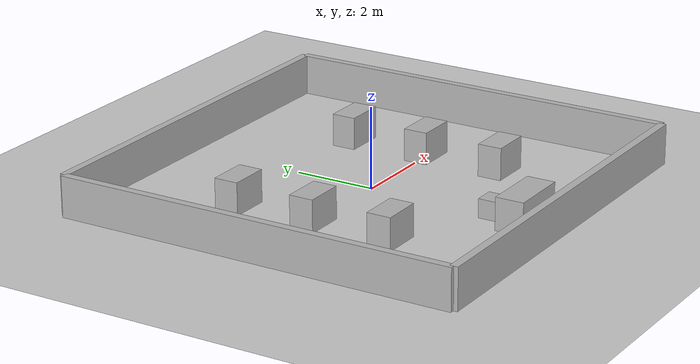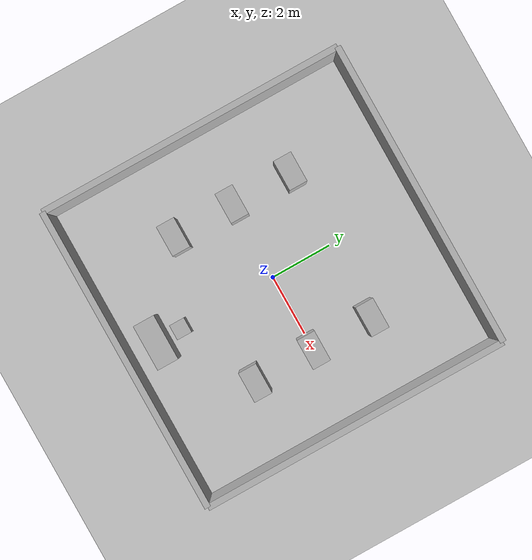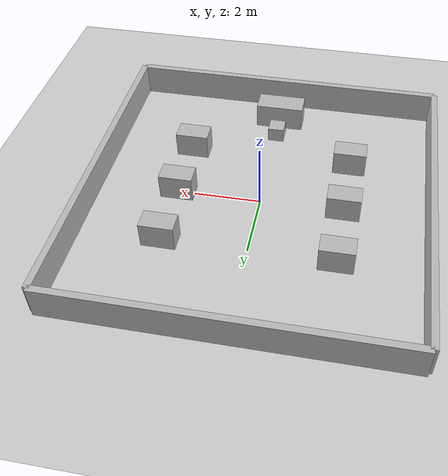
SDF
<?xml version="1.0" ?>
<sdf version="1.8">

<world name="classroom_world">

  <!-- Physics -->
  <physics name="1ms" type="gz-physics">
    <max_step_size>0.001</max_step_size>
    <real_time_factor>1.0</real_time_factor>
  </physics>

  <!-- Plugins -->
  <plugin name="gz::sim::systems::Physics" filename="gz-sim-physics-system"/>
  <plugin name="gz::sim::systems::UserCommands" filename="gz-sim-user-commands-system"/>
  <plugin name="gz::sim::systems::SceneBroadcaster" filename="gz-sim-scene-broadcaster-system"/>
  <plugin name="gz::sim::systems::Sensors" filename="gz-sim-sensors-system">
    <render_engine>ogre2</render_engine>
  </plugin>

  <!-- Light -->
  <light type="directional" name="sun">
    <pose>0 0 10 0 0 0</pose>
    <diffuse>0.8 0.8 0.8 1</diffuse>
    <specular>0.2 0.2 0.2 1</specular>
    <direction>-0.5 0.1 -0.9</direction>
  </light>

  <!-- Ground -->
  <model name="ground">
    <static>true</static>
    <link name="link">
      <collision name="ground_collision">
        <geometry>
          <plane>
            <normal>0 0 1</normal>
            <size>20 20</size>
          </plane>
        </geometry>
      </collision>
      <visual name="ground_visual">
        <geometry>
          <plane>
            <normal>0 0 1</normal>
            <size>20 20</size>
          </plane>
        </geometry>
      </visual>
    </link>
  </model>

  <!-- WALLS -->
  <model name="walls">
    <static>true</static>
    <link name="link">

      <collision name="north_collision">
        <pose>0 5 0.5 0 0 0</pose>
        <geometry><box><size>10 0.2 1</size></box></geometry>
      </collision>

      <collision name="south_collision">
        <pose>0 -5 0.5 0 0 0</pose>
        <geometry><box><size>10 0.2 1</size></box></geometry>
      </collision>

      <collision name="east_collision">
        <pose>5 0 0.5 0 0 0</pose>
        <geometry><box><size>0.2 10 1</size></box></geometry>
      </collision>

      <collision name="west_collision">
        <pose>-5 0 0.5 0 0 0</pose>
        <geometry><box><size>0.2 10 1</size></box></geometry>
      </collision>

      <visual name="north_visual">
        <pose>0 5 0.5 0 0 0</pose>
        <geometry><box><size>10 0.2 1</size></box></geometry>
      </visual>

      <visual name="south_visual">
        <pose>0 -5 0.5 0 0 0</pose>
        <geometry><box><size>10 0.2 1</size></box></geometry>
      </visual>

      <visual name="east_visual">
        <pose>5 0 0.5 0 0 0</pose>
        <geometry><box><size>0.2 10 1</size></box></geometry>
      </visual>

      <visual name="west_visual">
        <pose>-5 0 0.5 0 0 0</pose>
        <geometry><box><size>0.2 10 1</size></box></geometry>
      </visual>

    </link>
  </model>

  <!-- LEFT TABLES -->
  <model name="l_table_1">
    <static>true</static>
    <pose>-2.5 -2 0.4 0 0 0</pose>
    <link name="link">
      <visual name="visual">
        <geometry><box><size>1 0.6 0.8</size></box></geometry>
      </visual>
      <collision name="collision">
        <geometry><box><size>1 0.6 0.8</size></box></geometry>
      </collision>
    </link>
  </model>

  <model name="l_table_2">
    <static>true</static>
    <pose>-2.5 0 0.4 0 0 0</pose>
    <link name="link">
      <visual name="visual">
        <geometry><box><size>1 0.6 0.8</size></box></geometry>
      </visual>
      <collision name="collision">
        <geometry><box><size>1 0.6 0.8</size></box></geometry>
      </collision>
    </link>
  </model>

  <model name="l_table_3">
    <static>true</static>
    <pose>-2.5 2 0.4 0 0 0</pose>
    <link name="link">
      <visual name="visual">
        <geometry><box><size>1 0.6 0.8</size></box></geometry>
      </visual>
      <collision name="collision">
        <geometry><box><size>1 0.6 0.8</size></box></geometry>
      </collision>
    </link>
  </model>

  <!-- RIGHT TABLES -->
  <model name="r_table_1">
    <static>true</static>
    <pose>2.5 -2 0.4 0 0 0</pose>
    <link name="link">
      <visual name="visual">
        <geometry><box><size>1 0.6 0.8</size></box></geometry>
      </visual>
      <collision name="collision">
        <geometry><box><size>1 0.6 0.8</size></box></geometry>
      </collision>
    </link>
  </model>

  <model name="r_table_2">
    <static>true</static>
    <pose>2.5 0 0.4 0 0 0</pose>
    <link name="link">
      <visual name="visual">
        <geometry><box><size>1 0.6 0.8</size></box></geometry>
      </visual>
      <collision name="collision">
        <geometry><box><size>1 0.6 0.8</size></box></geometry>
      </collision>
    </link>
  </model>

  <model name="r_table_3">
    <static>true</static>
    <pose>2.5 2 0.4 0 0 0</pose>
    <link name="link">
      <visual name="visual">
        <geometry><box><size>1 0.6 0.8</size></box></geometry>
      </visual>
      <collision name="collision">
        <geometry><box><size>1 0.6 0.8</size></box></geometry>
      </collision>
    </link>
  </model>

  <model name="teacher_table">
    <static>true</static>
    <pose>0 -4 0.4 0 0 0</pose>
    <link name="link">
      <visual name="visual">
        <geometry><box><size>1.5 0.7 0.8</size></box></geometry>
      </visual>
      <collision name="collision">
        <geometry><box><size>1.5 0.7 0.8</size></box></geometry>
      </collision>
    </link>
  </model>

  <model name="teacher_chair">
    <static>true</static>
    <pose>0 -3.2 0.2 0 0 0</pose>
    <link name="link">
      <visual name="visual">
        <geometry><box><size>0.5 0.5 0.5</size></box></geometry>
      </visual>
      <collision name="collision">
        <geometry><box><size>0.5 0.5 0.5</size></box></geometry>
      </collision>
    </link>
  </model>

</world>
</sdf>
